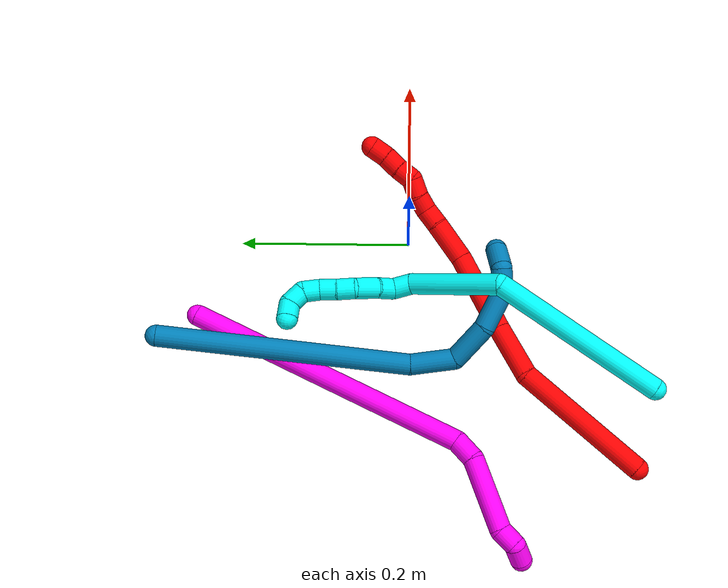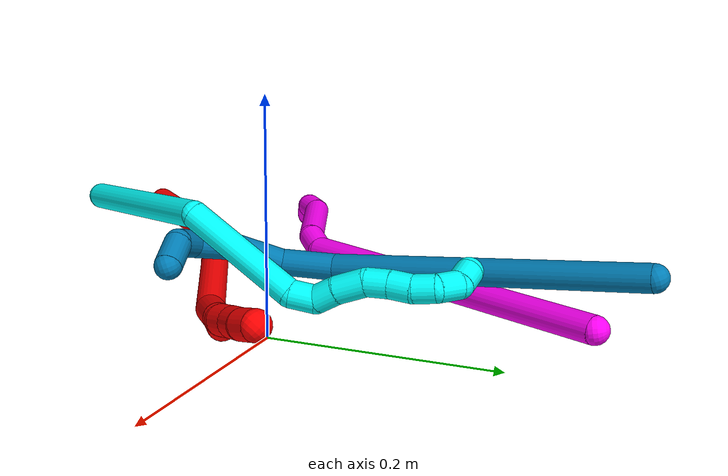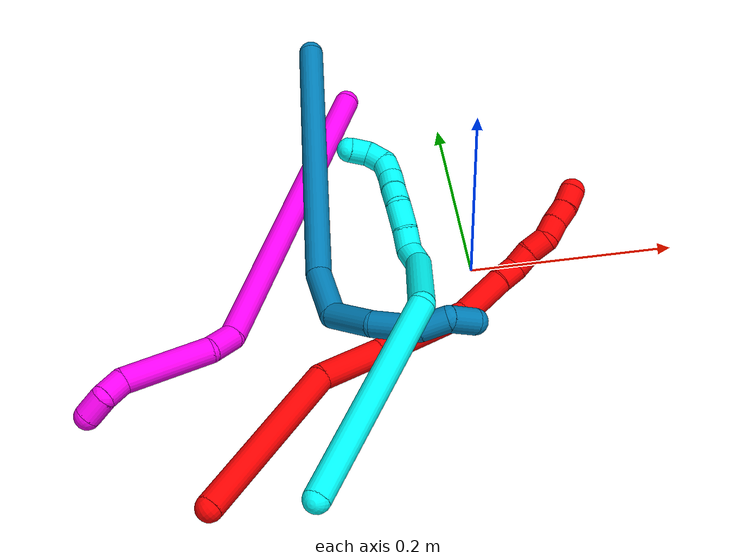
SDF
<sdf version="1.7">
 <world name="default">
  <model name="2">
   <static>0</static>
   <link name="2">
    <collision name="collision-cylinder-e_1_1_4">
     <pose>0.081143 0.007715 -0.00153 -1.76662 1.47417 -1.67094</pose>
     <geometry><cylinder><radius>0.0125</radius><length>0.163047</length></cylinder></geometry>
     <surface>
      <friction><ode><mu>1.16</mu><mu2>1.16</mu2><slip1>0</slip1><slip2>0</slip2></ode></friction>
      <contact><ode><kp>1e+06</kp><kd>1</kd><max_vel>0</max_vel><min_depth>0.001</min_depth></ode></contact>
     </surface>
    </collision>
    <visual name="visual-cylinder-e_1_1_4">
     <pose>0.081143 0.007715 -0.00153 -1.76662 1.47417 -1.67094</pose>
     <geometry><cylinder><radius>0.0125</radius><length>0.163047</length></cylinder></geometry>
     <material><ambient>1 0 0 1</ambient></material>
    </visual>
    <collision name="collision-cylinder-e_2_4_5">
     <pose>0.191295 0.022185 0.008252 -0.538303 1.14444 -0.351676</pose>
     <geometry><cylinder><radius>0.0125</radius><length>0.063721</length></cylinder></geometry>
     <surface>
      <friction><ode><mu>1.16</mu><mu2>1.16</mu2><slip1>0</slip1><slip2>0</slip2></ode></friction>
      <contact><ode><kp>1e+06</kp><kd>1</kd><max_vel>0</max_vel><min_depth>0.001</min_depth></ode></contact>
     </surface>
    </collision>
    <visual name="visual-cylinder-e_2_4_5">
     <pose>0.191295 0.022185 0.008252 -0.538303 1.14444 -0.351676</pose>
     <geometry><cylinder><radius>0.0125</radius><length>0.063721</length></cylinder></geometry>
     <material><ambient>1 0 0 1</ambient></material>
    </visual>
    <collision name="collision-cylinder-e_3_5_6">
     <pose>0.265056 0.042373 0.036248 -0.677897 1.1244 -0.437136</pose>
     <geometry><cylinder><radius>0.0125</radius><length>0.099229</length></cylinder></geometry>
     <surface>
      <friction><ode><mu>1.16</mu><mu2>1.16</mu2><slip1>0</slip1><slip2>0</slip2></ode></friction>
      <contact><ode><kp>1e+06</kp><kd>1</kd><max_vel>0</max_vel><min_depth>0.001</min_depth></ode></contact>
     </surface>
    </collision>
    <visual name="visual-cylinder-e_3_5_6">
     <pose>0.265056 0.042373 0.036248 -0.677897 1.1244 -0.437136</pose>
     <geometry><cylinder><radius>0.0125</radius><length>0.099229</length></cylinder></geometry>
     <material><ambient>1 0 0 1</ambient></material>
    </visual>
    <collision name="collision-cylinder-e_4_6_7">
     <pose>0.332542 0.064778 0.053466 -1.51125 1.19434 -1.13956</pose>
     <geometry><cylinder><radius>0.0125</radius><length>0.048892</length></cylinder></geometry>
     <surface>
      <friction><ode><mu>1.16</mu><mu2>1.16</mu2><slip1>0</slip1><slip2>0</slip2></ode></friction>
      <contact><ode><kp>1e+06</kp><kd>1</kd><max_vel>0</max_vel><min_depth>0.001</min_depth></ode></contact>
     </surface>
    </collision>
    <visual name="visual-cylinder-e_4_6_7">
     <pose>0.332542 0.064778 0.053466 -1.51125 1.19434 -1.13956</pose>
     <geometry><cylinder><radius>0.0125</radius><length>0.048892</length></cylinder></geometry>
     <material><ambient>1 0 0 1</ambient></material>
    </visual>
    <collision name="collision-cylinder-e_5_7_8">
     <pose>0.366141 0.076689 0.055352 -1.13994 1.28134 -0.891567</pose>
     <geometry><cylinder><radius>0.0125</radius><length>0.022673</length></cylinder></geometry>
     <surface>
      <friction><ode><mu>1.16</mu><mu2>1.16</mu2><slip1>0</slip1><slip2>0</slip2></ode></friction>
      <contact><ode><kp>1e+06</kp><kd>1</kd><max_vel>0</max_vel><min_depth>0.001</min_depth></ode></contact>
     </surface>
    </collision>
    <visual name="visual-cylinder-e_5_7_8">
     <pose>0.366141 0.076689 0.055352 -1.13994 1.28134 -0.891567</pose>
     <geometry><cylinder><radius>0.0125</radius><length>0.022673</length></cylinder></geometry>
     <material><ambient>1 0 0 1</ambient></material>
    </visual>
    <collision name="collision-cylinder-e_6_8_9">
     <pose>0.385053 0.08559 0.054887 -1.86666 0.911795 -1.16965</pose>
     <geometry><cylinder><radius>0.0125</radius><length>0.020356</length></cylinder></geometry>
     <surface>
      <friction><ode><mu>1.16</mu><mu2>1.16</mu2><slip1>0</slip1><slip2>0</slip2></ode></friction>
      <contact><ode><kp>1e+06</kp><kd>1</kd><max_vel>0</max_vel><min_depth>0.001</min_depth></ode></contact>
     </surface>
    </collision>
    <visual name="visual-cylinder-e_6_8_9">
     <pose>0.385053 0.08559 0.054887 -1.86666 0.911795 -1.16965</pose>
     <geometry><cylinder><radius>0.0125</radius><length>0.020356</length></cylinder></geometry>
     <material><ambient>1 0 0 1</ambient></material>
    </visual>
    <collision name="collision-cylinder-e_7_9_10">
     <pose>0.401129 0.09833 0.053507 -1.5064 0.868609 -0.82044</pose>
     <geometry><cylinder><radius>0.0125</radius><length>0.021034</length></cylinder></geometry>
     <surface>
      <friction><ode><mu>1.16</mu><mu2>1.16</mu2><slip1>0</slip1><slip2>0</slip2></ode></friction>
      <contact><ode><kp>1e+06</kp><kd>1</kd><max_vel>0</max_vel><min_depth>0.001</min_depth></ode></contact>
     </surface>
    </collision>
    <visual name="visual-cylinder-e_7_9_10">
     <pose>0.401129 0.09833 0.053507 -1.5064 0.868609 -0.82044</pose>
     <geometry><cylinder><radius>0.0125</radius><length>0.021034</length></cylinder></geometry>
     <material><ambient>1 0 0 1</ambient></material>
    </visual>
    <collision name="collision-cylinder-e_8_10_11">
     <pose>0.418949 0.107012 0.051618 -2.45584 1.27298 -2.2417</pose>
     <geometry><cylinder><radius>0.0125</radius><length>0.020485</length></cylinder></geometry>
     <surface>
      <friction><ode><mu>1.16</mu><mu2>1.16</mu2><slip1>0</slip1><slip2>0</slip2></ode></friction>
      <contact><ode><kp>1e+06</kp><kd>1</kd><max_vel>0</max_vel><min_depth>0.001</min_depth></ode></contact>
     </surface>
    </collision>
    <visual name="visual-cylinder-e_8_10_11">
     <pose>0.418949 0.107012 0.051618 -2.45584 1.27298 -2.2417</pose>
     <geometry><cylinder><radius>0.0125</radius><length>0.020485</length></cylinder></geometry>
     <material><ambient>1 0 0 1</ambient></material>
    </visual>
    <collision name="collision-cylinder-e_9_11_12">
     <pose>0.438414 0.111728 0.047778 -2.06451 1.25186 -1.76025</pose>
     <geometry><cylinder><radius>0.0125</radius><length>0.020373</length></cylinder></geometry>
     <surface>
      <friction><ode><mu>1.16</mu><mu2>1.16</mu2><slip1>0</slip1><slip2>0</slip2></ode></friction>
      <contact><ode><kp>1e+06</kp><kd>1</kd><max_vel>0</max_vel><min_depth>0.001</min_depth></ode></contact>
     </surface>
    </collision>
    <visual name="visual-cylinder-e_9_11_12">
     <pose>0.438414 0.111728 0.047778 -2.06451 1.25186 -1.76025</pose>
     <geometry><cylinder><radius>0.0125</radius><length>0.020373</length></cylinder></geometry>
     <material><ambient>1 0 0 1</ambient></material>
    </visual>
    <collision name="collision-cylinder-e_10_12_2">
     <pose>0.457578 0.11625 0.043281 -2.62137 1.22323 -2.4162</pose>
     <geometry><cylinder><radius>0.0125</radius><length>0.020191</length></cylinder></geometry>
     <surface>
      <friction><ode><mu>1.16</mu><mu2>1.16</mu2><slip1>0</slip1><slip2>0</slip2></ode></friction>
      <contact><ode><kp>1e+06</kp><kd>1</kd><max_vel>0</max_vel><min_depth>0.001</min_depth></ode></contact>
     </surface>
    </collision>
    <visual name="visual-cylinder-e_10_12_2">
     <pose>0.457578 0.11625 0.043281 -2.62137 1.22323 -2.4162</pose>
     <geometry><cylinder><radius>0.0125</radius><length>0.020191</length></cylinder></geometry>
     <material><ambient>1 0 0 1</ambient></material>
    </visual>
    <collision name="collision-sphere-2">
     <pose>0.46707 0.117959 0.040297 0 -0 0</pose>
     <geometry><sphere><radius>0.0125</radius></sphere></geometry>
     <surface>
      <friction><ode><mu>1.16</mu><mu2>1.16</mu2><slip1>0</slip1><slip2>0</slip2></ode></friction>
      <contact><ode><kp>1e+06</kp><kd>1</kd><max_vel>0</max_vel><min_depth>0.001</min_depth></ode></contact>
     </surface>
    </collision>
    <visual name="visual-sphere-2">
     <pose>0.46707 0.117959 0.040297 0 -0 0</pose>
     <geometry><sphere><radius>0.0125</radius></sphere></geometry>
     <material><ambient>1 0 0 1</ambient></material>
    </visual>
    <collision name="collision-sphere-12">
     <pose>0.448086 0.114541 0.046264 0 -0 0</pose>
     <geometry><sphere><radius>0.0125</radius></sphere></geometry>
     <surface>
      <friction><ode><mu>1.16</mu><mu2>1.16</mu2><slip1>0</slip1><slip2>0</slip2></ode></friction>
      <contact><ode><kp>1e+06</kp><kd>1</kd><max_vel>0</max_vel><min_depth>0.001</min_depth></ode></contact>
     </surface>
    </collision>
    <visual name="visual-sphere-12">
     <pose>0.448086 0.114541 0.046264 0 -0 0</pose>
     <geometry><sphere><radius>0.0125</radius></sphere></geometry>
     <material><ambient>1 0 0 1</ambient></material>
    </visual>
    <collision name="collision-sphere-11">
     <pose>0.428741 0.108915 0.049292 0 -0 0</pose>
     <geometry><sphere><radius>0.0125</radius></sphere></geometry>
     <surface>
      <friction><ode><mu>1.16</mu><mu2>1.16</mu2><slip1>0</slip1><slip2>0</slip2></ode></friction>
      <contact><ode><kp>1e+06</kp><kd>1</kd><max_vel>0</max_vel><min_depth>0.001</min_depth></ode></contact>
     </surface>
    </collision>
    <visual name="visual-sphere-11">
     <pose>0.428741 0.108915 0.049292 0 -0 0</pose>
     <geometry><sphere><radius>0.0125</radius></sphere></geometry>
     <material><ambient>1 0 0 1</ambient></material>
    </visual>
    <collision name="collision-sphere-10">
     <pose>0.409157 0.105109 0.053944 0 -0 0</pose>
     <geometry><sphere><radius>0.0125</radius></sphere></geometry>
     <surface>
      <friction><ode><mu>1.16</mu><mu2>1.16</mu2><slip1>0</slip1><slip2>0</slip2></ode></friction>
      <contact><ode><kp>1e+06</kp><kd>1</kd><max_vel>0</max_vel><min_depth>0.001</min_depth></ode></contact>
     </surface>
    </collision>
    <visual name="visual-sphere-10">
     <pose>0.409157 0.105109 0.053944 0 -0 0</pose>
     <geometry><sphere><radius>0.0125</radius></sphere></geometry>
     <material><ambient>1 0 0 1</ambient></material>
    </visual>
    <collision name="collision-sphere-9">
     <pose>0.3931 0.091552 0.05307 0 -0 0</pose>
     <geometry><sphere><radius>0.0125</radius></sphere></geometry>
     <surface>
      <friction><ode><mu>1.16</mu><mu2>1.16</mu2><slip1>0</slip1><slip2>0</slip2></ode></friction>
      <contact><ode><kp>1e+06</kp><kd>1</kd><max_vel>0</max_vel><min_depth>0.001</min_depth></ode></contact>
     </surface>
    </collision>
    <visual name="visual-sphere-9">
     <pose>0.3931 0.091552 0.05307 0 -0 0</pose>
     <geometry><sphere><radius>0.0125</radius></sphere></geometry>
     <material><ambient>1 0 0 1</ambient></material>
    </visual>
    <collision name="collision-sphere-4">
     <pose>0.162286 0.01543 -0.003061 0 -0 0</pose>
     <geometry><sphere><radius>0.0125</radius></sphere></geometry>
     <surface>
      <friction><ode><mu>1.16</mu><mu2>1.16</mu2><slip1>0</slip1><slip2>0</slip2></ode></friction>
      <contact><ode><kp>1e+06</kp><kd>1</kd><max_vel>0</max_vel><min_depth>0.001</min_depth></ode></contact>
     </surface>
    </collision>
    <visual name="visual-sphere-4">
     <pose>0.162286 0.01543 -0.003061 0 -0 0</pose>
     <geometry><sphere><radius>0.0125</radius></sphere></geometry>
     <material><ambient>1 0 0 1</ambient></material>
    </visual>
    <collision name="collision-sphere-1">
     <geometry><sphere><radius>0.0125</radius></sphere></geometry>
     <surface>
      <friction><ode><mu>1.16</mu><mu2>1.16</mu2><slip1>0</slip1><slip2>0</slip2></ode></friction>
      <contact><ode><kp>1e+06</kp><kd>1</kd><max_vel>0</max_vel><min_depth>0.001</min_depth></ode></contact>
     </surface>
    </collision>
    <visual name="visual-sphere-1">
     <geometry><sphere><radius>0.0125</radius></sphere></geometry>
     <material><ambient>1 0 0 1</ambient></material>
    </visual>
    <collision name="collision-sphere-8">
     <pose>0.377006 0.079629 0.056704 0 -0 0</pose>
     <geometry><sphere><radius>0.0125</radius></sphere></geometry>
     <surface>
      <friction><ode><mu>1.16</mu><mu2>1.16</mu2><slip1>0</slip1><slip2>0</slip2></ode></friction>
      <contact><ode><kp>1e+06</kp><kd>1</kd><max_vel>0</max_vel><min_depth>0.001</min_depth></ode></contact>
     </surface>
    </collision>
    <visual name="visual-sphere-8">
     <pose>0.377006 0.079629 0.056704 0 -0 0</pose>
     <geometry><sphere><radius>0.0125</radius></sphere></geometry>
     <material><ambient>1 0 0 1</ambient></material>
    </visual>
    <collision name="collision-sphere-5">
     <pose>0.220303 0.02894 0.019565 0 -0 0</pose>
     <geometry><sphere><radius>0.0125</radius></sphere></geometry>
     <surface>
      <friction><ode><mu>1.16</mu><mu2>1.16</mu2><slip1>0</slip1><slip2>0</slip2></ode></friction>
      <contact><ode><kp>1e+06</kp><kd>1</kd><max_vel>0</max_vel><min_depth>0.001</min_depth></ode></contact>
     </surface>
    </collision>
    <visual name="visual-sphere-5">
     <pose>0.220303 0.02894 0.019565 0 -0 0</pose>
     <geometry><sphere><radius>0.0125</radius></sphere></geometry>
     <material><ambient>1 0 0 1</ambient></material>
    </visual>
    <collision name="collision-sphere-6">
     <pose>0.309808 0.055806 0.052931 0 -0 0</pose>
     <geometry><sphere><radius>0.0125</radius></sphere></geometry>
     <surface>
      <friction><ode><mu>1.16</mu><mu2>1.16</mu2><slip1>0</slip1><slip2>0</slip2></ode></friction>
      <contact><ode><kp>1e+06</kp><kd>1</kd><max_vel>0</max_vel><min_depth>0.001</min_depth></ode></contact>
     </surface>
    </collision>
    <visual name="visual-sphere-6">
     <pose>0.309808 0.055806 0.052931 0 -0 0</pose>
     <geometry><sphere><radius>0.0125</radius></sphere></geometry>
     <material><ambient>1 0 0 1</ambient></material>
    </visual>
    <collision name="collision-sphere-7">
     <pose>0.355276 0.073749 0.054001 0 -0 0</pose>
     <geometry><sphere><radius>0.0125</radius></sphere></geometry>
     <surface>
      <friction><ode><mu>1.16</mu><mu2>1.16</mu2><slip1>0</slip1><slip2>0</slip2></ode></friction>
      <contact><ode><kp>1e+06</kp><kd>1</kd><max_vel>0</max_vel><min_depth>0.001</min_depth></ode></contact>
     </surface>
    </collision>
    <visual name="visual-sphere-7">
     <pose>0.355276 0.073749 0.054001 0 -0 0</pose>
     <geometry><sphere><radius>0.0125</radius></sphere></geometry>
     <material><ambient>1 0 0 1</ambient></material>
    </visual>
    <inertial>
     <pose>0.238618 0.044816 0.025779 0 -0 0</pose>
     <mass>0.5</mass>
     <inertia>
      <ixx>1.7e-05</ixx>
      <ixy>0</ixy>
      <ixz>0</ixz>
      <iyy>0.000434</iyy>
      <iyz>0</iyz>
      <izz>-0.000551</izz>
     </inertia>
    </inertial>
   </link>
   <pose>-0.267663 -0.260712 0.0383 2.32723 0.100438 0.913458</pose>
  </model>
  <model name="3">
   <static>0</static>
   <link name="3">
    <collision name="collision-cylinder-e_1_1_4">
     <pose>0.058905 0.029014 -0.08209 -2.80185 0.594814 -2.12119</pose>
     <geometry><cylinder><radius>0.0125</radius><length>0.210241</length></cylinder></geometry>
     <surface>
      <friction><ode><mu>1.16</mu><mu2>1.16</mu2><slip1>0</slip1><slip2>0</slip2></ode></friction>
      <contact><ode><kp>1e+06</kp><kd>1</kd><max_vel>0</max_vel><min_depth>0.001</min_depth></ode></contact>
     </surface>
    </collision>
    <visual name="visual-cylinder-e_1_1_4">
     <pose>0.058905 0.029014 -0.08209 -2.80185 0.594814 -2.12119</pose>
     <geometry><cylinder><radius>0.0125</radius><length>0.210241</length></cylinder></geometry>
     <material><ambient>0.003922 1 0.996078 1</ambient></material>
    </visual>
    <collision name="collision-cylinder-e_2_4_5">
     <pose>0.108737 0.075575 -0.218618 -2.82979 -0.157321 0.929686</pose>
     <geometry><cylinder><radius>0.0125</radius><length>0.115823</length></cylinder></geometry>
     <surface>
      <friction><ode><mu>1.16</mu><mu2>1.16</mu2><slip1>0</slip1><slip2>0</slip2></ode></friction>
      <contact><ode><kp>1e+06</kp><kd>1</kd><max_vel>0</max_vel><min_depth>0.001</min_depth></ode></contact>
     </surface>
    </collision>
    <visual name="visual-cylinder-e_2_4_5">
     <pose>0.108737 0.075575 -0.218618 -2.82979 -0.157321 0.929686</pose>
     <geometry><cylinder><radius>0.0125</radius><length>0.115823</length></cylinder></geometry>
     <material><ambient>0.003922 1 0.996078 1</ambient></material>
    </visual>
    <collision name="collision-cylinder-e_3_5_6">
     <pose>0.097945 0.101369 -0.280998 -2.3373 -0.148947 0.347309</pose>
     <geometry><cylinder><radius>0.0125</radius><length>0.023157</length></cylinder></geometry>
     <surface>
      <friction><ode><mu>1.16</mu><mu2>1.16</mu2><slip1>0</slip1><slip2>0</slip2></ode></friction>
      <contact><ode><kp>1e+06</kp><kd>1</kd><max_vel>0</max_vel><min_depth>0.001</min_depth></ode></contact>
     </surface>
    </collision>
    <visual name="visual-cylinder-e_3_5_6">
     <pose>0.097945 0.101369 -0.280998 -2.3373 -0.148947 0.347309</pose>
     <geometry><cylinder><radius>0.0125</radius><length>0.023157</length></cylinder></geometry>
     <material><ambient>0.003922 1 0.996078 1</ambient></material>
    </visual>
    <collision name="collision-cylinder-e_4_6_7">
     <pose>0.100882 0.118421 -0.29251 -1.95599 0.455622 -0.662932</pose>
     <geometry><cylinder><radius>0.0125</radius><length>0.021158</length></cylinder></geometry>
     <surface>
      <friction><ode><mu>1.16</mu><mu2>1.16</mu2><slip1>0</slip1><slip2>0</slip2></ode></friction>
      <contact><ode><kp>1e+06</kp><kd>1</kd><max_vel>0</max_vel><min_depth>0.001</min_depth></ode></contact>
     </surface>
    </collision>
    <visual name="visual-cylinder-e_4_6_7">
     <pose>0.100882 0.118421 -0.29251 -1.95599 0.455622 -0.662932</pose>
     <geometry><cylinder><radius>0.0125</radius><length>0.021158</length></cylinder></geometry>
     <material><ambient>0.003922 1 0.996078 1</ambient></material>
    </visual>
    <collision name="collision-cylinder-e_5_7_8">
     <pose>0.109865 0.138778 -0.302268 -2.06257 0.318941 -0.524836</pose>
     <geometry><cylinder><radius>0.0125</radius><length>0.027605</length></cylinder></geometry>
     <surface>
      <friction><ode><mu>1.16</mu><mu2>1.16</mu2><slip1>0</slip1><slip2>0</slip2></ode></friction>
      <contact><ode><kp>1e+06</kp><kd>1</kd><max_vel>0</max_vel><min_depth>0.001</min_depth></ode></contact>
     </surface>
    </collision>
    <visual name="visual-cylinder-e_5_7_8">
     <pose>0.109865 0.138778 -0.302268 -2.06257 0.318941 -0.524836</pose>
     <geometry><cylinder><radius>0.0125</radius><length>0.027605</length></cylinder></geometry>
     <material><ambient>0.003922 1 0.996078 1</ambient></material>
    </visual>
    <collision name="collision-cylinder-e_6_8_9">
     <pose>0.115239 0.157846 -0.315619 -2.33216 0.100409 -0.233532</pose>
     <geometry><cylinder><radius>0.0125</radius><length>0.020868</length></cylinder></geometry>
     <surface>
      <friction><ode><mu>1.16</mu><mu2>1.16</mu2><slip1>0</slip1><slip2>0</slip2></ode></friction>
      <contact><ode><kp>1e+06</kp><kd>1</kd><max_vel>0</max_vel><min_depth>0.001</min_depth></ode></contact>
     </surface>
    </collision>
    <visual name="visual-cylinder-e_6_8_9">
     <pose>0.115239 0.157846 -0.315619 -2.33216 0.100409 -0.233532</pose>
     <geometry><cylinder><radius>0.0125</radius><length>0.020868</length></cylinder></geometry>
     <material><ambient>0.003922 1 0.996078 1</ambient></material>
    </visual>
    <collision name="collision-cylinder-e_7_9_10">
     <pose>0.117098 0.171777 -0.330464 -2.44584 0.081087 -0.22281</pose>
     <geometry><cylinder><radius>0.0125</radius><length>0.020085</length></cylinder></geometry>
     <surface>
      <friction><ode><mu>1.16</mu><mu2>1.16</mu2><slip1>0</slip1><slip2>0</slip2></ode></friction>
      <contact><ode><kp>1e+06</kp><kd>1</kd><max_vel>0</max_vel><min_depth>0.001</min_depth></ode></contact>
     </surface>
    </collision>
    <visual name="visual-cylinder-e_7_9_10">
     <pose>0.117098 0.171777 -0.330464 -2.44584 0.081087 -0.22281</pose>
     <geometry><cylinder><radius>0.0125</radius><length>0.020085</length></cylinder></geometry>
     <material><ambient>0.003922 1 0.996078 1</ambient></material>
    </visual>
    <collision name="collision-cylinder-e_8_10_11">
     <pose>0.119078 0.186268 -0.344107 -2.2066 0.115726 -0.228498</pose>
     <geometry><cylinder><radius>0.0125</radius><length>0.020207</length></cylinder></geometry>
     <surface>
      <friction><ode><mu>1.16</mu><mu2>1.16</mu2><slip1>0</slip1><slip2>0</slip2></ode></friction>
      <contact><ode><kp>1e+06</kp><kd>1</kd><max_vel>0</max_vel><min_depth>0.001</min_depth></ode></contact>
     </surface>
    </collision>
    <visual name="visual-cylinder-e_8_10_11">
     <pose>0.119078 0.186268 -0.344107 -2.2066 0.115726 -0.228498</pose>
     <geometry><cylinder><radius>0.0125</radius><length>0.020207</length></cylinder></geometry>
     <material><ambient>0.003922 1 0.996078 1</ambient></material>
    </visual>
    <collision name="collision-cylinder-e_9_11_12">
     <pose>0.116751 0.203961 -0.351971 -1.76623 -0.342247 0.414709</pose>
     <geometry><cylinder><radius>0.0125</radius><length>0.020818</length></cylinder></geometry>
     <surface>
      <friction><ode><mu>1.16</mu><mu2>1.16</mu2><slip1>0</slip1><slip2>0</slip2></ode></friction>
      <contact><ode><kp>1e+06</kp><kd>1</kd><max_vel>0</max_vel><min_depth>0.001</min_depth></ode></contact>
     </surface>
    </collision>
    <visual name="visual-cylinder-e_9_11_12">
     <pose>0.116751 0.203961 -0.351971 -1.76623 -0.342247 0.414709</pose>
     <geometry><cylinder><radius>0.0125</radius><length>0.020818</length></cylinder></geometry>
     <material><ambient>0.003922 1 0.996078 1</ambient></material>
    </visual>
    <collision name="collision-cylinder-e_10_12_2">
     <pose>0.109355 0.221257 -0.348755 -0.982665 -0.400207 0.21621</pose>
     <geometry><cylinder><radius>0.0125</radius><length>0.020038</length></cylinder></geometry>
     <surface>
      <friction><ode><mu>1.16</mu><mu2>1.16</mu2><slip1>0</slip1><slip2>0</slip2></ode></friction>
      <contact><ode><kp>1e+06</kp><kd>1</kd><max_vel>0</max_vel><min_depth>0.001</min_depth></ode></contact>
     </surface>
    </collision>
    <visual name="visual-cylinder-e_10_12_2">
     <pose>0.109355 0.221257 -0.348755 -0.982665 -0.400207 0.21621</pose>
     <geometry><cylinder><radius>0.0125</radius><length>0.020038</length></cylinder></geometry>
     <material><ambient>0.003922 1 0.996078 1</ambient></material>
    </visual>
    <collision name="collision-sphere-2">
     <pose>0.105451 0.228934 -0.343636 0 -0 0</pose>
     <geometry><sphere><radius>0.0125</radius></sphere></geometry>
     <surface>
      <friction><ode><mu>1.16</mu><mu2>1.16</mu2><slip1>0</slip1><slip2>0</slip2></ode></friction>
      <contact><ode><kp>1e+06</kp><kd>1</kd><max_vel>0</max_vel><min_depth>0.001</min_depth></ode></contact>
     </surface>
    </collision>
    <visual name="visual-sphere-2">
     <pose>0.105451 0.228934 -0.343636 0 -0 0</pose>
     <geometry><sphere><radius>0.0125</radius></sphere></geometry>
     <material><ambient>0.003922 1 0.996078 1</ambient></material>
    </visual>
    <collision name="collision-sphere-12">
     <pose>0.113258 0.21358 -0.353875 0 -0 0</pose>
     <geometry><sphere><radius>0.0125</radius></sphere></geometry>
     <surface>
      <friction><ode><mu>1.16</mu><mu2>1.16</mu2><slip1>0</slip1><slip2>0</slip2></ode></friction>
      <contact><ode><kp>1e+06</kp><kd>1</kd><max_vel>0</max_vel><min_depth>0.001</min_depth></ode></contact>
     </surface>
    </collision>
    <visual name="visual-sphere-12">
     <pose>0.113258 0.21358 -0.353875 0 -0 0</pose>
     <geometry><sphere><radius>0.0125</radius></sphere></geometry>
     <material><ambient>0.003922 1 0.996078 1</ambient></material>
    </visual>
    <collision name="collision-sphere-11">
     <pose>0.120245 0.194343 -0.350066 0 -0 0</pose>
     <geometry><sphere><radius>0.0125</radius></sphere></geometry>
     <surface>
      <friction><ode><mu>1.16</mu><mu2>1.16</mu2><slip1>0</slip1><slip2>0</slip2></ode></friction>
      <contact><ode><kp>1e+06</kp><kd>1</kd><max_vel>0</max_vel><min_depth>0.001</min_depth></ode></contact>
     </surface>
    </collision>
    <visual name="visual-sphere-11">
     <pose>0.120245 0.194343 -0.350066 0 -0 0</pose>
     <geometry><sphere><radius>0.0125</radius></sphere></geometry>
     <material><ambient>0.003922 1 0.996078 1</ambient></material>
    </visual>
    <collision name="collision-sphere-10">
     <pose>0.117912 0.178193 -0.338147 0 -0 0</pose>
     <geometry><sphere><radius>0.0125</radius></sphere></geometry>
     <surface>
      <friction><ode><mu>1.16</mu><mu2>1.16</mu2><slip1>0</slip1><slip2>0</slip2></ode></friction>
      <contact><ode><kp>1e+06</kp><kd>1</kd><max_vel>0</max_vel><min_depth>0.001</min_depth></ode></contact>
     </surface>
    </collision>
    <visual name="visual-sphere-10">
     <pose>0.117912 0.178193 -0.338147 0 -0 0</pose>
     <geometry><sphere><radius>0.0125</radius></sphere></geometry>
     <material><ambient>0.003922 1 0.996078 1</ambient></material>
    </visual>
    <collision name="collision-sphere-9">
     <pose>0.116285 0.165362 -0.322781 0 -0 0</pose>
     <geometry><sphere><radius>0.0125</radius></sphere></geometry>
     <surface>
      <friction><ode><mu>1.16</mu><mu2>1.16</mu2><slip1>0</slip1><slip2>0</slip2></ode></friction>
      <contact><ode><kp>1e+06</kp><kd>1</kd><max_vel>0</max_vel><min_depth>0.001</min_depth></ode></contact>
     </surface>
    </collision>
    <visual name="visual-sphere-9">
     <pose>0.116285 0.165362 -0.322781 0 -0 0</pose>
     <geometry><sphere><radius>0.0125</radius></sphere></geometry>
     <material><ambient>0.003922 1 0.996078 1</ambient></material>
    </visual>
    <collision name="collision-sphere-4">
     <pose>0.11781 0.058029 -0.16418 0 -0 0</pose>
     <geometry><sphere><radius>0.0125</radius></sphere></geometry>
     <surface>
      <friction><ode><mu>1.16</mu><mu2>1.16</mu2><slip1>0</slip1><slip2>0</slip2></ode></friction>
      <contact><ode><kp>1e+06</kp><kd>1</kd><max_vel>0</max_vel><min_depth>0.001</min_depth></ode></contact>
     </surface>
    </collision>
    <visual name="visual-sphere-4">
     <pose>0.11781 0.058029 -0.16418 0 -0 0</pose>
     <geometry><sphere><radius>0.0125</radius></sphere></geometry>
     <material><ambient>0.003922 1 0.996078 1</ambient></material>
    </visual>
    <collision name="collision-sphere-1">
     <geometry><sphere><radius>0.0125</radius></sphere></geometry>
     <surface>
      <friction><ode><mu>1.16</mu><mu2>1.16</mu2><slip1>0</slip1><slip2>0</slip2></ode></friction>
      <contact><ode><kp>1e+06</kp><kd>1</kd><max_vel>0</max_vel><min_depth>0.001</min_depth></ode></contact>
     </surface>
    </collision>
    <visual name="visual-sphere-1">
     <geometry><sphere><radius>0.0125</radius></sphere></geometry>
     <material><ambient>0.003922 1 0.996078 1</ambient></material>
    </visual>
    <collision name="collision-sphere-8">
     <pose>0.114193 0.150331 -0.308457 0 -0 0</pose>
     <geometry><sphere><radius>0.0125</radius></sphere></geometry>
     <surface>
      <friction><ode><mu>1.16</mu><mu2>1.16</mu2><slip1>0</slip1><slip2>0</slip2></ode></friction>
      <contact><ode><kp>1e+06</kp><kd>1</kd><max_vel>0</max_vel><min_depth>0.001</min_depth></ode></contact>
     </surface>
    </collision>
    <visual name="visual-sphere-8">
     <pose>0.114193 0.150331 -0.308457 0 -0 0</pose>
     <geometry><sphere><radius>0.0125</radius></sphere></geometry>
     <material><ambient>0.003922 1 0.996078 1</ambient></material>
    </visual>
    <collision name="collision-sphere-5">
     <pose>0.099663 0.093121 -0.273056 0 -0 0</pose>
     <geometry><sphere><radius>0.0125</radius></sphere></geometry>
     <surface>
      <friction><ode><mu>1.16</mu><mu2>1.16</mu2><slip1>0</slip1><slip2>0</slip2></ode></friction>
      <contact><ode><kp>1e+06</kp><kd>1</kd><max_vel>0</max_vel><min_depth>0.001</min_depth></ode></contact>
     </surface>
    </collision>
    <visual name="visual-sphere-5">
     <pose>0.099663 0.093121 -0.273056 0 -0 0</pose>
     <geometry><sphere><radius>0.0125</radius></sphere></geometry>
     <material><ambient>0.003922 1 0.996078 1</ambient></material>
    </visual>
    <collision name="collision-sphere-6">
     <pose>0.096227 0.109617 -0.28894 0 -0 0</pose>
     <geometry><sphere><radius>0.0125</radius></sphere></geometry>
     <surface>
      <friction><ode><mu>1.16</mu><mu2>1.16</mu2><slip1>0</slip1><slip2>0</slip2></ode></friction>
      <contact><ode><kp>1e+06</kp><kd>1</kd><max_vel>0</max_vel><min_depth>0.001</min_depth></ode></contact>
     </surface>
    </collision>
    <visual name="visual-sphere-6">
     <pose>0.096227 0.109617 -0.28894 0 -0 0</pose>
     <geometry><sphere><radius>0.0125</radius></sphere></geometry>
     <material><ambient>0.003922 1 0.996078 1</ambient></material>
    </visual>
    <collision name="collision-sphere-7">
     <pose>0.105537 0.127225 -0.296079 0 -0 0</pose>
     <geometry><sphere><radius>0.0125</radius></sphere></geometry>
     <surface>
      <friction><ode><mu>1.16</mu><mu2>1.16</mu2><slip1>0</slip1><slip2>0</slip2></ode></friction>
      <contact><ode><kp>1e+06</kp><kd>1</kd><max_vel>0</max_vel><min_depth>0.001</min_depth></ode></contact>
     </surface>
    </collision>
    <visual name="visual-sphere-7">
     <pose>0.105537 0.127225 -0.296079 0 -0 0</pose>
     <geometry><sphere><radius>0.0125</radius></sphere></geometry>
     <material><ambient>0.003922 1 0.996078 1</ambient></material>
    </visual>
    <inertial>
     <pose>0.088397 0.08545 -0.196225 0 -0 0</pose>
     <mass>0.5</mass>
     <inertia>
      <ixx>-0.000687</ixx>
      <ixy>0</ixy>
      <ixz>0</ixz>
      <iyy>5e-06</iyy>
      <iyz>0</iyz>
      <izz>-0.000713</izz>
     </inertia>
    </inertial>
   </link>
   <pose>-0.179675 -0.279558 0.058947 0.662358 -0.812701 0.216845</pose>
  </model>
  <model name="9">
   <static>0</static>
   <link name="9">
    <collision name="collision-cylinder-e_1_1_4">
     <pose>-0.06727 -0.057802 -0.116929 2.68249 -0.476157 -1.60863</pose>
     <geometry><cylinder><radius>0.0125</radius><length>0.293522</length></cylinder></geometry>
     <surface>
      <friction><ode><mu>1.16</mu><mu2>1.16</mu2><slip1>0</slip1><slip2>0</slip2></ode></friction>
      <contact><ode><kp>1e+06</kp><kd>1</kd><max_vel>0</max_vel><min_depth>0.001</min_depth></ode></contact>
     </surface>
    </collision>
    <visual name="visual-cylinder-e_1_1_4">
     <pose>-0.06727 -0.057802 -0.116929 2.68249 -0.476157 -1.60863</pose>
     <geometry><cylinder><radius>0.0125</radius><length>0.293522</length></cylinder></geometry>
     <material><ambient>0 0.490196 0.709804 1</ambient></material>
    </visual>
    <collision name="collision-cylinder-e_2_4_5">
     <pose>-0.14041 -0.12758 -0.256798 2.66044 -0.223017 -0.856366</pose>
     <geometry><cylinder><radius>0.0125</radius><length>0.053071</length></cylinder></geometry>
     <surface>
      <friction><ode><mu>1.16</mu><mu2>1.16</mu2><slip1>0</slip1><slip2>0</slip2></ode></friction>
      <contact><ode><kp>1e+06</kp><kd>1</kd><max_vel>0</max_vel><min_depth>0.001</min_depth></ode></contact>
     </surface>
    </collision>
    <visual name="visual-cylinder-e_2_4_5">
     <pose>-0.14041 -0.12758 -0.256798 2.66044 -0.223017 -0.856366</pose>
     <geometry><cylinder><radius>0.0125</radius><length>0.053071</length></cylinder></geometry>
     <material><ambient>0 0.490196 0.709804 1</ambient></material>
    </visual>
    <collision name="collision-cylinder-e_3_5_6">
     <pose>-0.133866 -0.152012 -0.297938 2.5414 0.512643 1.40546</pose>
     <geometry><cylinder><radius>0.0125</radius><length>0.050615</length></cylinder></geometry>
     <surface>
      <friction><ode><mu>1.16</mu><mu2>1.16</mu2><slip1>0</slip1><slip2>0</slip2></ode></friction>
      <contact><ode><kp>1e+06</kp><kd>1</kd><max_vel>0</max_vel><min_depth>0.001</min_depth></ode></contact>
     </surface>
    </collision>
    <visual name="visual-cylinder-e_3_5_6">
     <pose>-0.133866 -0.152012 -0.297938 2.5414 0.512643 1.40546</pose>
     <geometry><cylinder><radius>0.0125</radius><length>0.050615</length></cylinder></geometry>
     <material><ambient>0 0.490196 0.709804 1</ambient></material>
    </visual>
    <collision name="collision-cylinder-e_4_6_7">
     <pose>-0.106007 -0.169186 -0.332404 2.85934 0.739403 2.43879</pose>
     <geometry><cylinder><radius>0.0125</radius><length>0.045844</length></cylinder></geometry>
     <surface>
      <friction><ode><mu>1.16</mu><mu2>1.16</mu2><slip1>0</slip1><slip2>0</slip2></ode></friction>
      <contact><ode><kp>1e+06</kp><kd>1</kd><max_vel>0</max_vel><min_depth>0.001</min_depth></ode></contact>
     </surface>
    </collision>
    <visual name="visual-cylinder-e_4_6_7">
     <pose>-0.106007 -0.169186 -0.332404 2.85934 0.739403 2.43879</pose>
     <geometry><cylinder><radius>0.0125</radius><length>0.045844</length></cylinder></geometry>
     <material><ambient>0 0.490196 0.709804 1</ambient></material>
    </visual>
    <collision name="collision-cylinder-e_5_7_8">
     <pose>-0.077516 -0.173956 -0.353361 3.1304 1.22558 3.12568</pose>
     <geometry><cylinder><radius>0.0125</radius><length>0.027725</length></cylinder></geometry>
     <surface>
      <friction><ode><mu>1.16</mu><mu2>1.16</mu2><slip1>0</slip1><slip2>0</slip2></ode></friction>
      <contact><ode><kp>1e+06</kp><kd>1</kd><max_vel>0</max_vel><min_depth>0.001</min_depth></ode></contact>
     </surface>
    </collision>
    <visual name="visual-cylinder-e_5_7_8">
     <pose>-0.077516 -0.173956 -0.353361 3.1304 1.22558 3.12568</pose>
     <geometry><cylinder><radius>0.0125</radius><length>0.027725</length></cylinder></geometry>
     <material><ambient>0 0.490196 0.709804 1</ambient></material>
    </visual>
    <collision name="collision-cylinder-e_6_8_2">
     <pose>-0.055692 -0.164266 -0.364495 -2.15509 0.644622 -1.11176</pose>
     <geometry><cylinder><radius>0.0125</radius><length>0.029224</length></cylinder></geometry>
     <surface>
      <friction><ode><mu>1.16</mu><mu2>1.16</mu2><slip1>0</slip1><slip2>0</slip2></ode></friction>
      <contact><ode><kp>1e+06</kp><kd>1</kd><max_vel>0</max_vel><min_depth>0.001</min_depth></ode></contact>
     </surface>
    </collision>
    <visual name="visual-cylinder-e_6_8_2">
     <pose>-0.055692 -0.164266 -0.364495 -2.15509 0.644622 -1.11176</pose>
     <geometry><cylinder><radius>0.0125</radius><length>0.029224</length></cylinder></geometry>
     <material><ambient>0 0.490196 0.709804 1</ambient></material>
    </visual>
    <collision name="collision-sphere-2">
     <pose>-0.046911 -0.154524 -0.370937 0 -0 0</pose>
     <geometry><sphere><radius>0.0125</radius></sphere></geometry>
     <surface>
      <friction><ode><mu>1.16</mu><mu2>1.16</mu2><slip1>0</slip1><slip2>0</slip2></ode></friction>
      <contact><ode><kp>1e+06</kp><kd>1</kd><max_vel>0</max_vel><min_depth>0.001</min_depth></ode></contact>
     </surface>
    </collision>
    <visual name="visual-sphere-2">
     <pose>-0.046911 -0.154524 -0.370937 0 -0 0</pose>
     <geometry><sphere><radius>0.0125</radius></sphere></geometry>
     <material><ambient>0 0.490196 0.709804 1</ambient></material>
    </visual>
    <collision name="collision-sphere-4">
     <pose>-0.134541 -0.115603 -0.233858 0 -0 0</pose>
     <geometry><sphere><radius>0.0125</radius></sphere></geometry>
     <surface>
      <friction><ode><mu>1.16</mu><mu2>1.16</mu2><slip1>0</slip1><slip2>0</slip2></ode></friction>
      <contact><ode><kp>1e+06</kp><kd>1</kd><max_vel>0</max_vel><min_depth>0.001</min_depth></ode></contact>
     </surface>
    </collision>
    <visual name="visual-sphere-4">
     <pose>-0.134541 -0.115603 -0.233858 0 -0 0</pose>
     <geometry><sphere><radius>0.0125</radius></sphere></geometry>
     <material><ambient>0 0.490196 0.709804 1</ambient></material>
    </visual>
    <collision name="collision-sphere-1">
     <geometry><sphere><radius>0.0125</radius></sphere></geometry>
     <surface>
      <friction><ode><mu>1.16</mu><mu2>1.16</mu2><slip1>0</slip1><slip2>0</slip2></ode></friction>
      <contact><ode><kp>1e+06</kp><kd>1</kd><max_vel>0</max_vel><min_depth>0.001</min_depth></ode></contact>
     </surface>
    </collision>
    <visual name="visual-sphere-1">
     <geometry><sphere><radius>0.0125</radius></sphere></geometry>
     <material><ambient>0 0.490196 0.709804 1</ambient></material>
    </visual>
    <collision name="collision-sphere-8">
     <pose>-0.064472 -0.174008 -0.358052 0 -0 0</pose>
     <geometry><sphere><radius>0.0125</radius></sphere></geometry>
     <surface>
      <friction><ode><mu>1.16</mu><mu2>1.16</mu2><slip1>0</slip1><slip2>0</slip2></ode></friction>
      <contact><ode><kp>1e+06</kp><kd>1</kd><max_vel>0</max_vel><min_depth>0.001</min_depth></ode></contact>
     </surface>
    </collision>
    <visual name="visual-sphere-8">
     <pose>-0.064472 -0.174008 -0.358052 0 -0 0</pose>
     <geometry><sphere><radius>0.0125</radius></sphere></geometry>
     <material><ambient>0 0.490196 0.709804 1</ambient></material>
    </visual>
    <collision name="collision-sphere-5">
     <pose>-0.146278 -0.139556 -0.279738 0 -0 0</pose>
     <geometry><sphere><radius>0.0125</radius></sphere></geometry>
     <surface>
      <friction><ode><mu>1.16</mu><mu2>1.16</mu2><slip1>0</slip1><slip2>0</slip2></ode></friction>
      <contact><ode><kp>1e+06</kp><kd>1</kd><max_vel>0</max_vel><min_depth>0.001</min_depth></ode></contact>
     </surface>
    </collision>
    <visual name="visual-sphere-5">
     <pose>-0.146278 -0.139556 -0.279738 0 -0 0</pose>
     <geometry><sphere><radius>0.0125</radius></sphere></geometry>
     <material><ambient>0 0.490196 0.709804 1</ambient></material>
    </visual>
    <collision name="collision-sphere-6">
     <pose>-0.121453 -0.164469 -0.316138 0 -0 0</pose>
     <geometry><sphere><radius>0.0125</radius></sphere></geometry>
     <surface>
      <friction><ode><mu>1.16</mu><mu2>1.16</mu2><slip1>0</slip1><slip2>0</slip2></ode></friction>
      <contact><ode><kp>1e+06</kp><kd>1</kd><max_vel>0</max_vel><min_depth>0.001</min_depth></ode></contact>
     </surface>
    </collision>
    <visual name="visual-sphere-6">
     <pose>-0.121453 -0.164469 -0.316138 0 -0 0</pose>
     <geometry><sphere><radius>0.0125</radius></sphere></geometry>
     <material><ambient>0 0.490196 0.709804 1</ambient></material>
    </visual>
    <collision name="collision-sphere-7">
     <pose>-0.090561 -0.173903 -0.348671 0 -0 0</pose>
     <geometry><sphere><radius>0.0125</radius></sphere></geometry>
     <surface>
      <friction><ode><mu>1.16</mu><mu2>1.16</mu2><slip1>0</slip1><slip2>0</slip2></ode></friction>
      <contact><ode><kp>1e+06</kp><kd>1</kd><max_vel>0</max_vel><min_depth>0.001</min_depth></ode></contact>
     </surface>
    </collision>
    <visual name="visual-sphere-7">
     <pose>-0.090561 -0.173903 -0.348671 0 -0 0</pose>
     <geometry><sphere><radius>0.0125</radius></sphere></geometry>
     <material><ambient>0 0.490196 0.709804 1</ambient></material>
    </visual>
    <inertial>
     <pose>-0.085218 -0.097621 -0.197435 0 -0 0</pose>
     <mass>0.5</mass>
     <inertia>
      <ixx>-0.001948</ixx>
      <ixy>0</ixy>
      <ixz>0</ixz>
      <iyy>-0.001383</iyy>
      <iyz>0</iyz>
      <izz>0.001775</izz>
     </inertia>
    </inertial>
   </link>
   <pose>-0.123202 0.287723 0.051764 -1.21034 -0.411334 0.387495</pose>
  </model>
  <model name="10">
   <static>0</static>
   <link name="10">
    <collision name="collision-cylinder-e_1_1_4">
     <pose>-0.055081 -0.072553 0.142979 0.469583 -0.330906 -0.079842</pose>
     <geometry><cylinder><radius>0.0125</radius><length>0.339062</length></cylinder></geometry>
     <surface>
      <friction><ode><mu>1.16</mu><mu2>1.16</mu2><slip1>0</slip1><slip2>0</slip2></ode></friction>
      <contact><ode><kp>1e+06</kp><kd>1</kd><max_vel>0</max_vel><min_depth>0.001</min_depth></ode></contact>
     </surface>
    </collision>
    <visual name="visual-cylinder-e_1_1_4">
     <pose>-0.055081 -0.072553 0.142979 0.469583 -0.330906 -0.079842</pose>
     <geometry><cylinder><radius>0.0125</radius><length>0.339062</length></cylinder></geometry>
     <material><ambient>1 0 0.964706 1</ambient></material>
    </visual>
    <collision name="collision-cylinder-e_2_4_5">
     <pose>-0.118725 -0.154025 0.293493 0.869222 -0.632875 -0.301695</pose>
     <geometry><cylinder><radius>0.0125</radius><length>0.028959</length></cylinder></geometry>
     <surface>
      <friction><ode><mu>1.16</mu><mu2>1.16</mu2><slip1>0</slip1><slip2>0</slip2></ode></friction>
      <contact><ode><kp>1e+06</kp><kd>1</kd><max_vel>0</max_vel><min_depth>0.001</min_depth></ode></contact>
     </surface>
    </collision>
    <visual name="visual-cylinder-e_2_4_5">
     <pose>-0.118725 -0.154025 0.293493 0.869222 -0.632875 -0.301695</pose>
     <geometry><cylinder><radius>0.0125</radius><length>0.028959</length></cylinder></geometry>
     <material><ambient>1 0 0.964706 1</ambient></material>
    </visual>
    <collision name="collision-cylinder-e_3_5_6">
     <pose>-0.147171 -0.199606 0.311118 1.30226 -0.481755 -0.370077</pose>
     <geometry><cylinder><radius>0.0125</radius><length>0.085822</length></cylinder></geometry>
     <surface>
      <friction><ode><mu>1.16</mu><mu2>1.16</mu2><slip1>0</slip1><slip2>0</slip2></ode></friction>
      <contact><ode><kp>1e+06</kp><kd>1</kd><max_vel>0</max_vel><min_depth>0.001</min_depth></ode></contact>
     </surface>
    </collision>
    <visual name="visual-cylinder-e_3_5_6">
     <pose>-0.147171 -0.199606 0.311118 1.30226 -0.481755 -0.370077</pose>
     <geometry><cylinder><radius>0.0125</radius><length>0.085822</length></cylinder></geometry>
     <material><ambient>1 0 0.964706 1</ambient></material>
    </visual>
    <collision name="collision-cylinder-e_4_6_7">
     <pose>-0.171821 -0.244027 0.328228 0.835144 -0.427563 -0.192046</pose>
     <geometry><cylinder><radius>0.0125</radius><length>0.022994</length></cylinder></geometry>
     <surface>
      <friction><ode><mu>1.16</mu><mu2>1.16</mu2><slip1>0</slip1><slip2>0</slip2></ode></friction>
      <contact><ode><kp>1e+06</kp><kd>1</kd><max_vel>0</max_vel><min_depth>0.001</min_depth></ode></contact>
     </surface>
    </collision>
    <visual name="visual-cylinder-e_4_6_7">
     <pose>-0.171821 -0.244027 0.328228 0.835144 -0.427563 -0.192046</pose>
     <geometry><cylinder><radius>0.0125</radius><length>0.022994</length></cylinder></geometry>
     <material><ambient>1 0 0.964706 1</ambient></material>
    </visual>
    <collision name="collision-cylinder-e_5_7_2">
     <pose>-0.173595 -0.262073 0.339641 1.16735 0.261375 0.173177</pose>
     <geometry><cylinder><radius>0.0125</radius><length>0.023163</length></cylinder></geometry>
     <surface>
      <friction><ode><mu>1.16</mu><mu2>1.16</mu2><slip1>0</slip1><slip2>0</slip2></ode></friction>
      <contact><ode><kp>1e+06</kp><kd>1</kd><max_vel>0</max_vel><min_depth>0.001</min_depth></ode></contact>
     </surface>
    </collision>
    <visual name="visual-cylinder-e_5_7_2">
     <pose>-0.173595 -0.262073 0.339641 1.16735 0.261375 0.173177</pose>
     <geometry><cylinder><radius>0.0125</radius><length>0.023163</length></cylinder></geometry>
     <material><ambient>1 0 0.964706 1</ambient></material>
    </visual>
    <collision name="collision-sphere-2">
     <pose>-0.170603 -0.272363 0.344033 0 -0 0</pose>
     <geometry><sphere><radius>0.0125</radius></sphere></geometry>
     <surface>
      <friction><ode><mu>1.16</mu><mu2>1.16</mu2><slip1>0</slip1><slip2>0</slip2></ode></friction>
      <contact><ode><kp>1e+06</kp><kd>1</kd><max_vel>0</max_vel><min_depth>0.001</min_depth></ode></contact>
     </surface>
    </collision>
    <visual name="visual-sphere-2">
     <pose>-0.170603 -0.272363 0.344033 0 -0 0</pose>
     <geometry><sphere><radius>0.0125</radius></sphere></geometry>
     <material><ambient>1 0 0.964706 1</ambient></material>
    </visual>
    <collision name="collision-sphere-7">
     <pose>-0.176588 -0.251784 0.335249 0 -0 0</pose>
     <geometry><sphere><radius>0.0125</radius></sphere></geometry>
     <surface>
      <friction><ode><mu>1.16</mu><mu2>1.16</mu2><slip1>0</slip1><slip2>0</slip2></ode></friction>
      <contact><ode><kp>1e+06</kp><kd>1</kd><max_vel>0</max_vel><min_depth>0.001</min_depth></ode></contact>
     </surface>
    </collision>
    <visual name="visual-sphere-7">
     <pose>-0.176588 -0.251784 0.335249 0 -0 0</pose>
     <geometry><sphere><radius>0.0125</radius></sphere></geometry>
     <material><ambient>1 0 0.964706 1</ambient></material>
    </visual>
    <collision name="collision-sphere-6">
     <pose>-0.167054 -0.23627 0.321207 0 -0 0</pose>
     <geometry><sphere><radius>0.0125</radius></sphere></geometry>
     <surface>
      <friction><ode><mu>1.16</mu><mu2>1.16</mu2><slip1>0</slip1><slip2>0</slip2></ode></friction>
      <contact><ode><kp>1e+06</kp><kd>1</kd><max_vel>0</max_vel><min_depth>0.001</min_depth></ode></contact>
     </surface>
    </collision>
    <visual name="visual-sphere-6">
     <pose>-0.167054 -0.23627 0.321207 0 -0 0</pose>
     <geometry><sphere><radius>0.0125</radius></sphere></geometry>
     <material><ambient>1 0 0.964706 1</ambient></material>
    </visual>
    <collision name="collision-sphere-5">
     <pose>-0.127289 -0.162942 0.301028 0 -0 0</pose>
     <geometry><sphere><radius>0.0125</radius></sphere></geometry>
     <surface>
      <friction><ode><mu>1.16</mu><mu2>1.16</mu2><slip1>0</slip1><slip2>0</slip2></ode></friction>
      <contact><ode><kp>1e+06</kp><kd>1</kd><max_vel>0</max_vel><min_depth>0.001</min_depth></ode></contact>
     </surface>
    </collision>
    <visual name="visual-sphere-5">
     <pose>-0.127289 -0.162942 0.301028 0 -0 0</pose>
     <geometry><sphere><radius>0.0125</radius></sphere></geometry>
     <material><ambient>1 0 0.964706 1</ambient></material>
    </visual>
    <collision name="collision-sphere-1">
     <geometry><sphere><radius>0.0125</radius></sphere></geometry>
     <surface>
      <friction><ode><mu>1.16</mu><mu2>1.16</mu2><slip1>0</slip1><slip2>0</slip2></ode></friction>
      <contact><ode><kp>1e+06</kp><kd>1</kd><max_vel>0</max_vel><min_depth>0.001</min_depth></ode></contact>
     </surface>
    </collision>
    <visual name="visual-sphere-1">
     <geometry><sphere><radius>0.0125</radius></sphere></geometry>
     <material><ambient>1 0 0.964706 1</ambient></material>
    </visual>
    <collision name="collision-sphere-4">
     <pose>-0.110161 -0.145107 0.285958 0 -0 0</pose>
     <geometry><sphere><radius>0.0125</radius></sphere></geometry>
     <surface>
      <friction><ode><mu>1.16</mu><mu2>1.16</mu2><slip1>0</slip1><slip2>0</slip2></ode></friction>
      <contact><ode><kp>1e+06</kp><kd>1</kd><max_vel>0</max_vel><min_depth>0.001</min_depth></ode></contact>
     </surface>
    </collision>
    <visual name="visual-sphere-4">
     <pose>-0.110161 -0.145107 0.285958 0 -0 0</pose>
     <geometry><sphere><radius>0.0125</radius></sphere></geometry>
     <material><ambient>1 0 0.964706 1</ambient></material>
    </visual>
    <inertial>
     <pose>-0.085433 -0.115745 0.198186 0 -0 0</pose>
     <mass>0.5</mass>
     <inertia>
      <ixx>0.002849</ixx>
      <ixy>0</ixy>
      <ixz>0</ixz>
      <iyy>0.002679</iyy>
      <iyz>0</iyz>
      <izz>0.002563</izz>
     </inertia>
    </inertial>
   </link>
   <pose>-0.091137 0.248236 0.012327 2.04375 1.16703 0.539887</pose>
  </model>
 </world>
</sdf>
